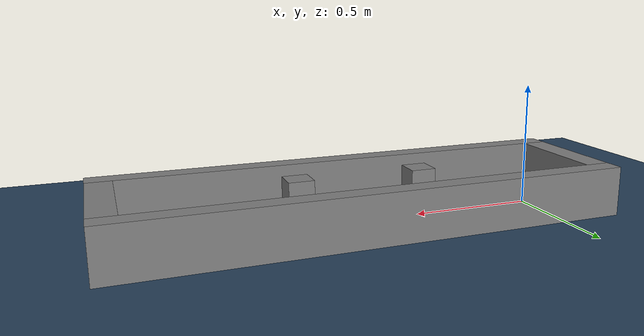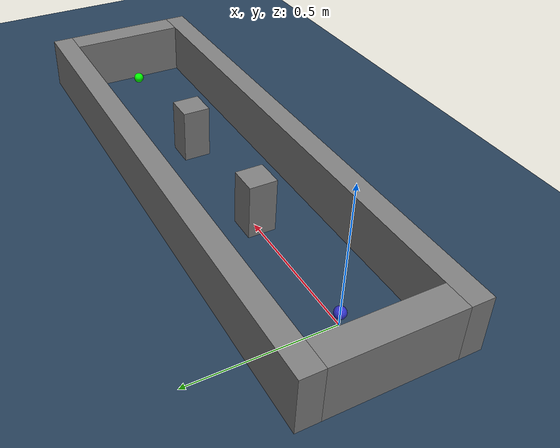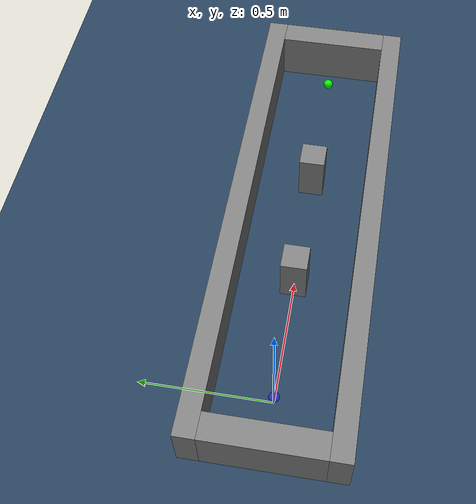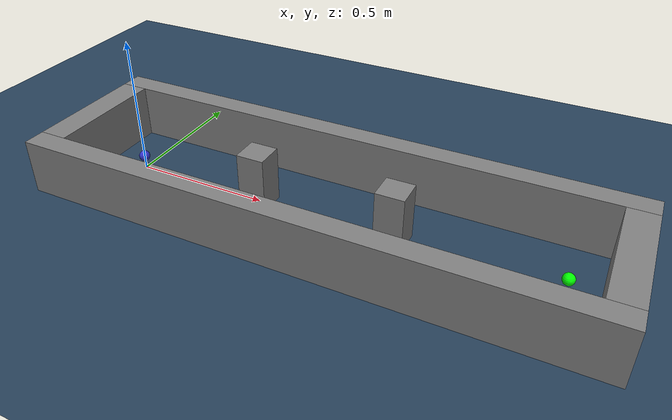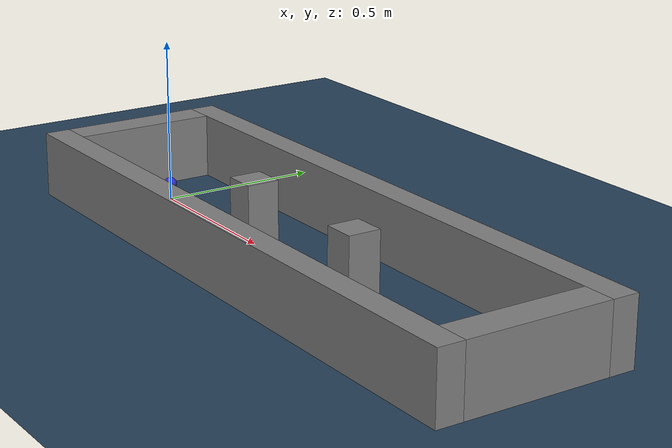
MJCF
<mujoco>
    <option timestep="0.01" integrator="RK4"/>
    <worldbody>
      <light pos="0 0 1.5" dir="0 0 -1" directional="true" />
    <geom name="floor" size="0 0 0.05" type="plane" material="groundplane" friction=".5 0.005 0.001"
        priority="2" condim="4" />
    </worldbody>

    <worldbody>

      <body name="ball" pos=".0 0 .05">
        <geom name="gball_0" type="sphere" size="0.02" mass="5." material="BallMat"
          friction=".5 0.005 0.001 " condim="4" />
        <site name="sensor_ball" />
        <joint name="joint_x" type="slide" pos="0 0 0" axis="1 0 0" />
        <joint name="joint_y" type="slide" pos="0 0 0" axis="0 1 0" />
      </body>

       <body name="case" pos="0 0 0.1">
        <geom name="gcase_a" type="box" size="0.05 0.22 0.1" pos="-.2 0 0" />
        <geom name="gcase_b" type="box" size="0.05 0.22 0.1" pos="1.7 0 0" />
        <geom name="gcase_c" type="box" size="1 0.04 0.1" pos="0.75 .26 0" />
        <geom name="gcase_d" type="box" size="1 0.04 0.1" pos="0.75 -.26 0" />

        <geom name="first" type="box" size="0.05 0.05 0.1" pos="0.5 0.0 0" />
        <geom name="second" type="box" size="0.05 0.05 0.1" pos="1.0 0.0 0" />

      </body>
      <site name="target" pos="1.55 0.0 0.05" size="0.02" rgba="0 1 0 1" />

    </worldbody>

    <actuator>
      <motor name="actuator_x" joint="joint_x" gear="1" />
      <motor name="actuator_y" joint="joint_y" gear="1" />
    </actuator>

    <asset>
      <!-- Materials for visualization -->
      <material name="MatPlane" rgba="0.8 0.9 0.8 1" />
      <material name="CubeMat1" rgba="0.94 1.0 0.0 1" />
      <material name="CubeMat2" rgba="0.8 0.2 0.2 1" />
      <material name="BallMat" rgba="0.2 0.2 0.8 1" />

      <texture type="skybox" builtin="gradient" rgb1="0.3 0.5 0.7" rgb2="0 0 0" width="512"
        height="3072" />
      <texture type="2d" name="groundplane" builtin="checker" mark="edge" rgb1="0.2 0.3 0.4"
        rgb2="0.1 0.2 0.3"
        markrgb="0.8 0.8 0.8" width="300" height="300" />
      <material name="groundplane" texture="groundplane" texuniform="true" texrepeat="5 5"
        reflectance="0.2" />
    </asset>

    <visual>
      <headlight diffuse="0.6 0.6 0.6" ambient="0.3 0.3 0.3" specular="0 0 0" />
      <rgba haze="0.15 0.25 0.35 1" />
      <global azimuth="60" elevation="-20" />
    </visual>

  </mujoco>
